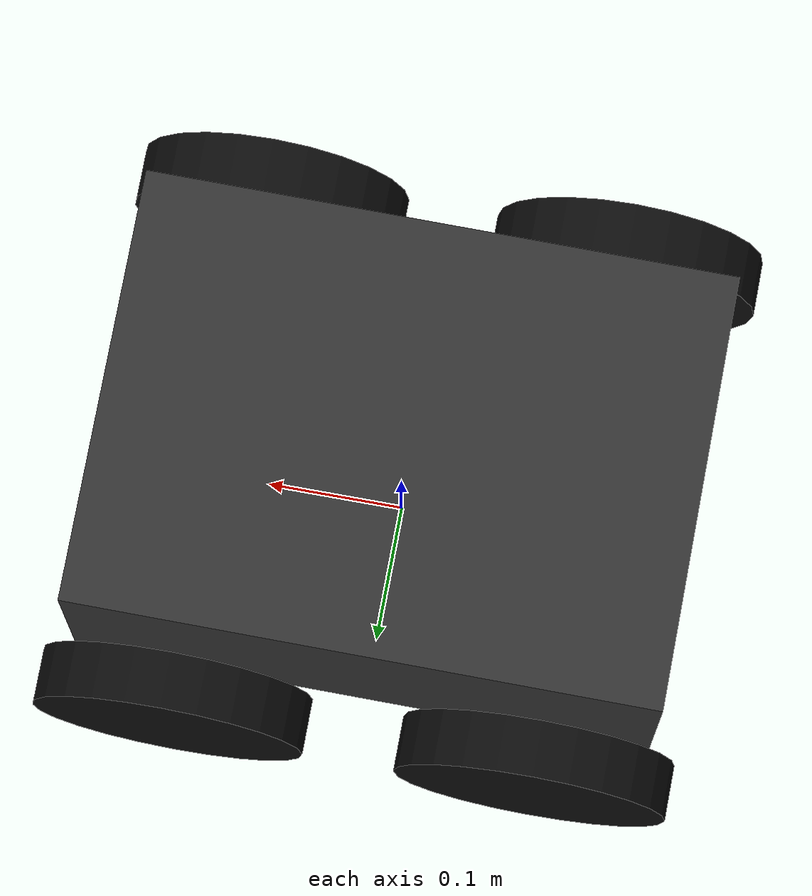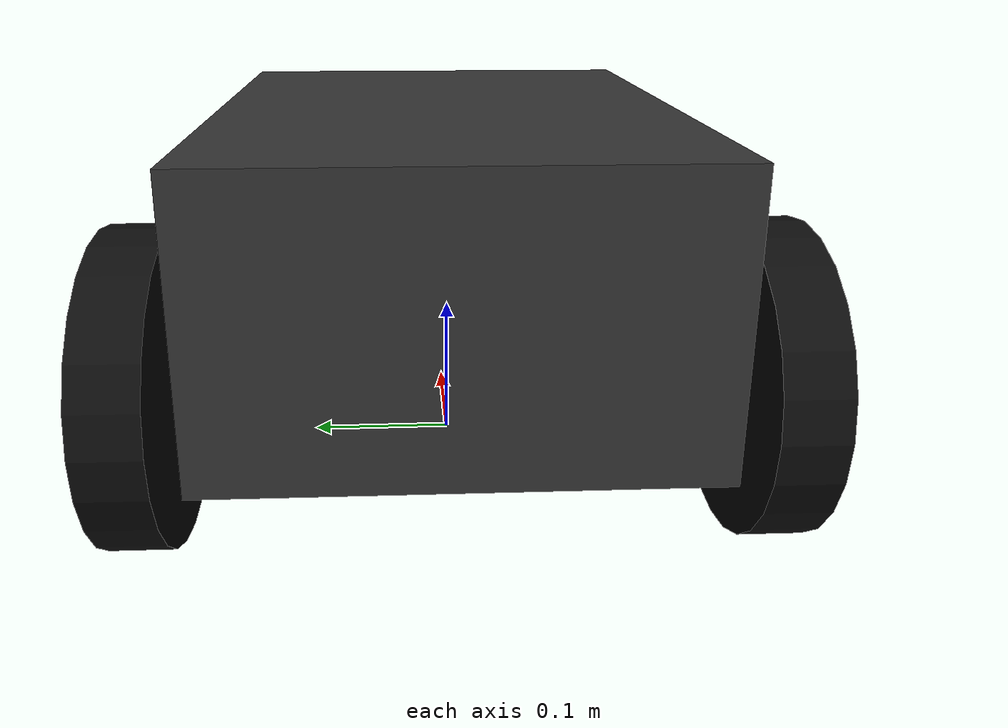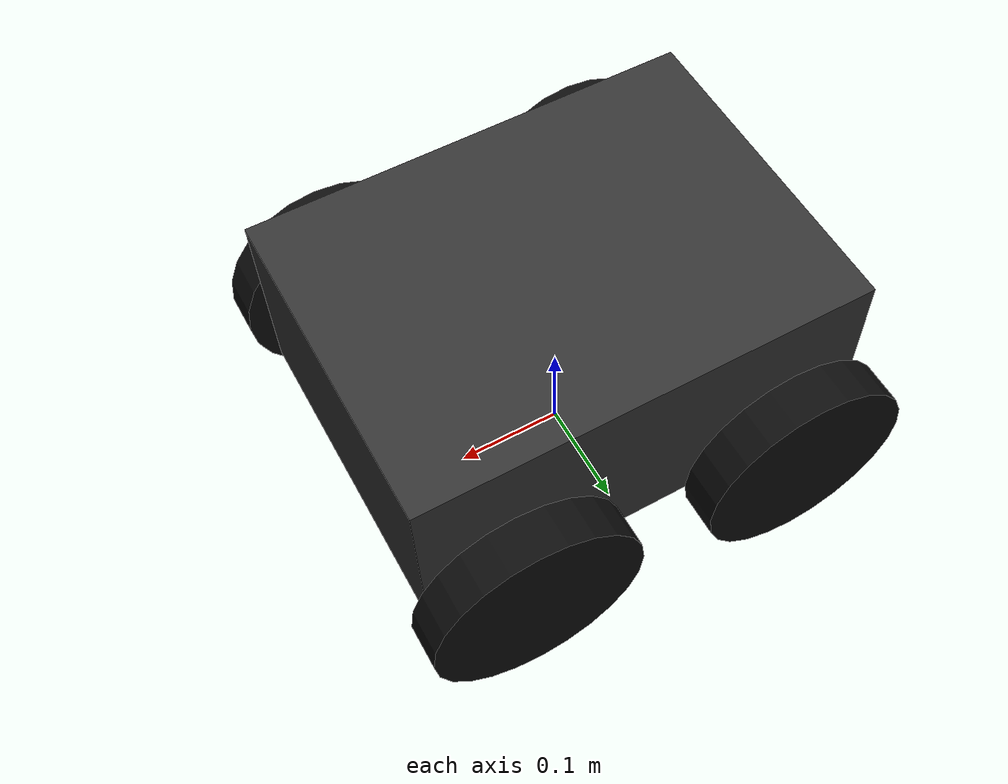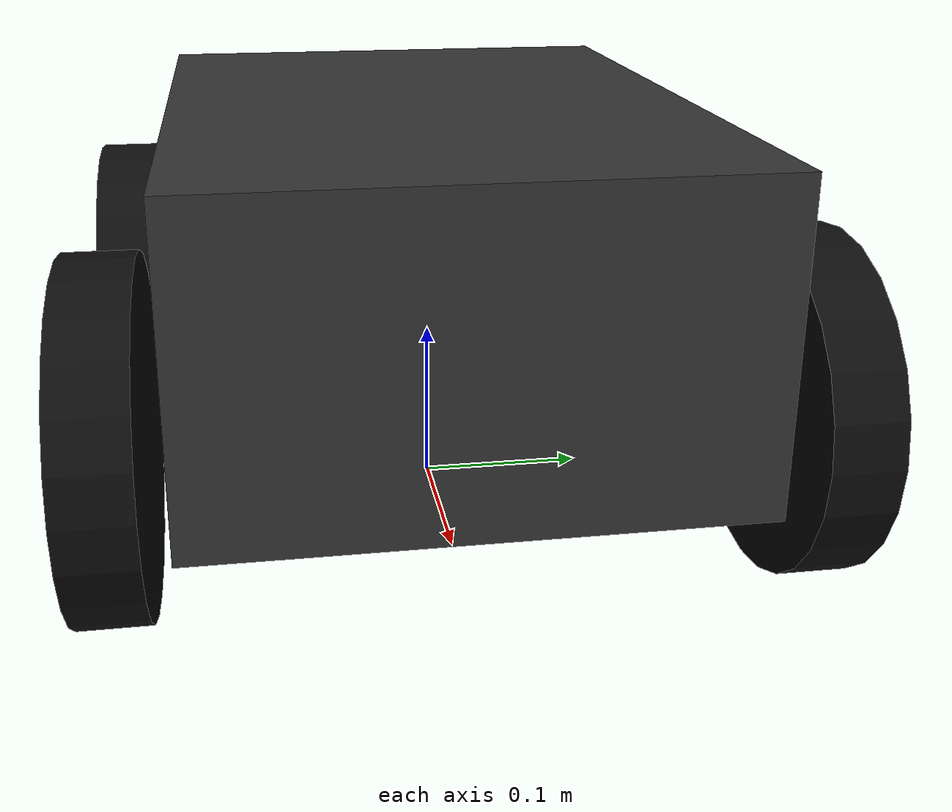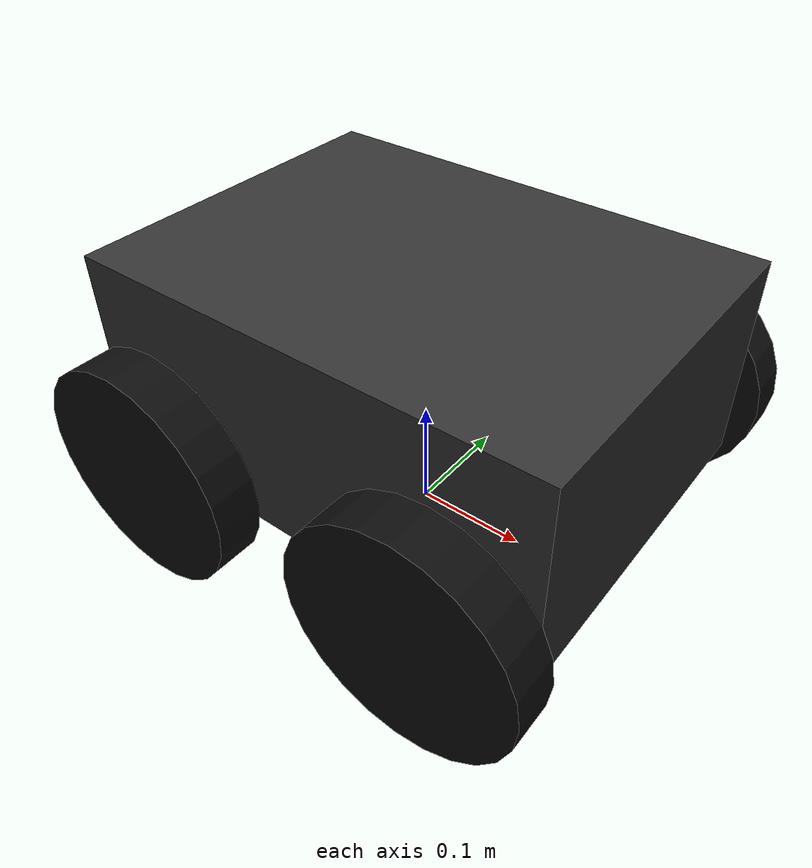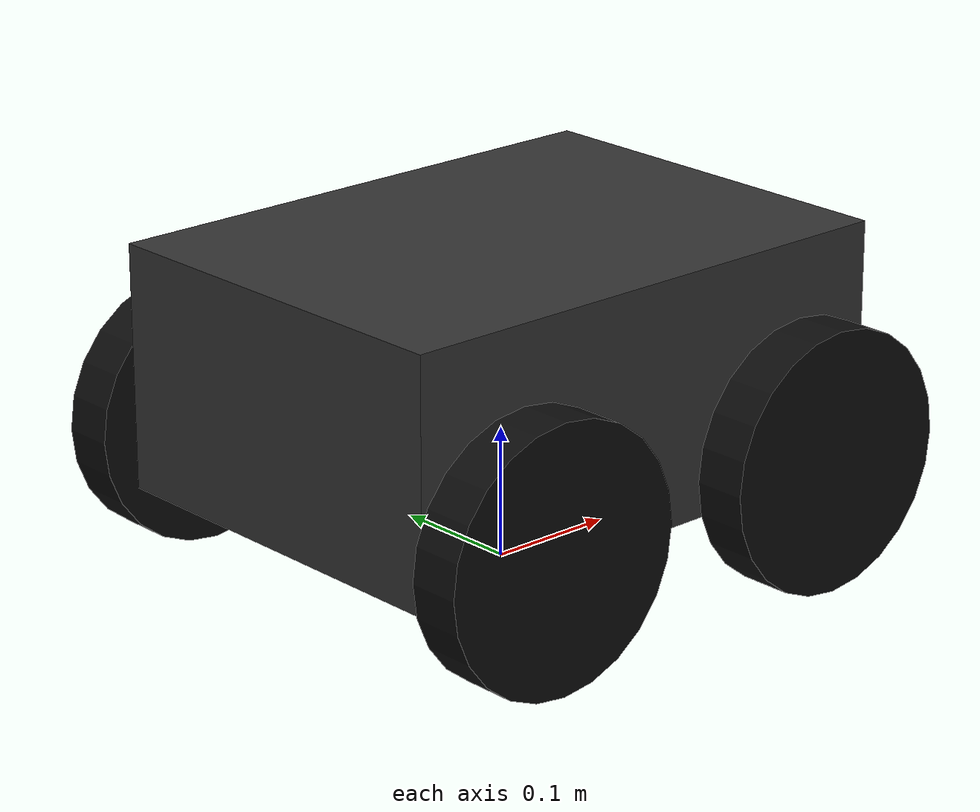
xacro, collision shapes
<?xml version="1.0"?>
<robot name="jackal" xmlns:xacro="http://www.ros.org/wiki/xacro">
  <xacro:arg name="robot_namespace" default="jackal"/>

  <xacro:property name="jackal_pi" value="3.1415926535897931"/>
  <xacro:property name="wheelbase" value="0.262"/>
  <xacro:property name="track" value="0.37559"/>
  <xacro:property name="wheel_vertical_offset" value="0.0345"/>
  <xacro:property name="wheel_radius" value="0.098"/>
  <xacro:property name="wheel_width" value="0.040"/>
  <!-- Shift the stock geometry so jackal_base_link lies on the ground plane. -->
  <xacro:property name="ground_offset" value="${wheel_radius - wheel_vertical_offset}"/>

  <material name="jackal_dark_grey">
    <color rgba="0.20 0.20 0.20 1.0"/>
  </material>
  <material name="jackal_yellow">
    <color rgba="0.90 0.72 0.00 1.0"/>
  </material>
  <material name="jackal_black">
    <color rgba="0.05 0.05 0.05 1.0"/>
  </material>

  <link name="jackal_base_link"/>

  <joint name="jackal_base_to_chassis" type="fixed">
    <parent link="jackal_base_link"/>
    <child link="jackal_chassis_link"/>
  </joint>

  <link name="jackal_chassis_link">
    <visual name="base_visual">
      <origin xyz="0 0 ${-0.0655 + ground_offset}" rpy="${jackal_pi/2} 0 ${jackal_pi/2}"/>
      <geometry>
        <mesh filename="package://jackal_description/meshes/jackal-base.stl"/>
      </geometry>
      <material name="jackal_dark_grey"/>
    </visual>
    <visual name="front_fender_visual">
      <origin xyz="0 0 ${ground_offset}"/>
      <geometry>
        <mesh filename="package://jackal_description/meshes/jackal-fender.stl"/>
      </geometry>
      <material name="jackal_yellow"/>
    </visual>
    <visual name="rear_fender_visual">
      <origin xyz="0 0 ${ground_offset}" rpy="0 0 ${jackal_pi}"/>
      <geometry>
        <mesh filename="package://jackal_description/meshes/jackal-fender.stl"/>
      </geometry>
      <material name="jackal_yellow"/>
    </visual>
    <collision>
      <origin xyz="0 0 ${0.092 + ground_offset}"/>
      <geometry>
        <box size="0.420 0.310 0.184"/>
      </geometry>
    </collision>
    <inertial>
      <origin xyz="0.012 0.002 ${0.067 + ground_offset}"/>
      <mass value="16.523"/>
      <inertia ixx="0.3136" ixy="-0.0008" ixz="0.0164"
               iyy="0.3922" iyz="-0.0009" izz="0.4485"/>
    </inertial>
  </link>

  <xacro:macro name="jackal_wheel" params="prefix x y">
    <link name="jackal_${prefix}_wheel_link">
      <visual>
        <origin rpy="${jackal_pi/2} 0 0"/>
        <geometry>
          <mesh filename="package://jackal_description/meshes/jackal-wheel.stl"/>
        </geometry>
        <material name="jackal_black"/>
      </visual>
      <collision>
        <origin rpy="${jackal_pi/2} 0 0"/>
        <geometry>
          <cylinder radius="${wheel_radius}" length="${wheel_width}"/>
        </geometry>
      </collision>
      <inertial>
        <mass value="0.477"/>
        <inertia ixx="0.0013" ixy="0" ixz="0"
                 iyy="0.0024" iyz="0" izz="0.0013"/>
      </inertial>
    </link>

    <joint name="jackal_${prefix}_wheel_joint" type="continuous">
      <origin xyz="${x} ${y} ${wheel_vertical_offset + ground_offset}"/>
      <parent link="jackal_chassis_link"/>
      <child link="jackal_${prefix}_wheel_link"/>
      <axis xyz="0 1 0"/>
      <dynamics damping="0.1" friction="0.0"/>
    </joint>

    <gazebo reference="jackal_${prefix}_wheel_link">
      <material>Gazebo/DarkGrey</material>
      <selfCollide>false</selfCollide>
      <mu1>0.8</mu1>
      <mu2>0.8</mu2>
      <kp>1000000.0</kp>
      <kd>1.0</kd>
      <fdir1>1 0 0</fdir1>
    </gazebo>
  </xacro:macro>

  <xacro:jackal_wheel prefix="front_left"  x="${ wheelbase/2}" y="${ track/2}"/>
  <xacro:jackal_wheel prefix="front_right" x="${ wheelbase/2}" y="${-track/2}"/>
  <xacro:jackal_wheel prefix="rear_left"   x="${-wheelbase/2}" y="${ track/2}"/>
  <xacro:jackal_wheel prefix="rear_right"  x="${-wheelbase/2}" y="${-track/2}"/>

  <gazebo reference="jackal_chassis_link">
    <material>Gazebo/Grey</material>
    <selfCollide>false</selfCollide>
  </gazebo>

  <gazebo>
    <plugin name="jackal_skid_steer" filename="libgazebo_ros_skid_steer_drive.so">
      <robotNamespace>/$(arg robot_namespace)</robotNamespace>
      <updateRate>50.0</updateRate>
      <leftFrontJoint>jackal_front_left_wheel_joint</leftFrontJoint>
      <rightFrontJoint>jackal_front_right_wheel_joint</rightFrontJoint>
      <leftRearJoint>jackal_rear_left_wheel_joint</leftRearJoint>
      <rightRearJoint>jackal_rear_right_wheel_joint</rightRearJoint>
      <wheelSeparation>${track}</wheelSeparation>
      <wheelDiameter>${2 * wheel_radius}</wheelDiameter>
      <torque>20.0</torque>
      <commandTopic>cmd_vel</commandTopic>
      <odometryTopic>odom</odometryTopic>
      <odometryFrame>odom</odometryFrame>
      <robotBaseFrame>jackal_base_link</robotBaseFrame>
      <broadcastTF>true</broadcastTF>
    </plugin>

    <plugin name="jackal_joint_states" filename="libgazebo_ros_joint_state_publisher.so">
      <robotNamespace>/$(arg robot_namespace)</robotNamespace>
      <updateRate>30.0</updateRate>
      <jointName>jackal_front_left_wheel_joint,jackal_front_right_wheel_joint,jackal_rear_left_wheel_joint,jackal_rear_right_wheel_joint</jointName>
    </plugin>
  </gazebo>
</robot>
